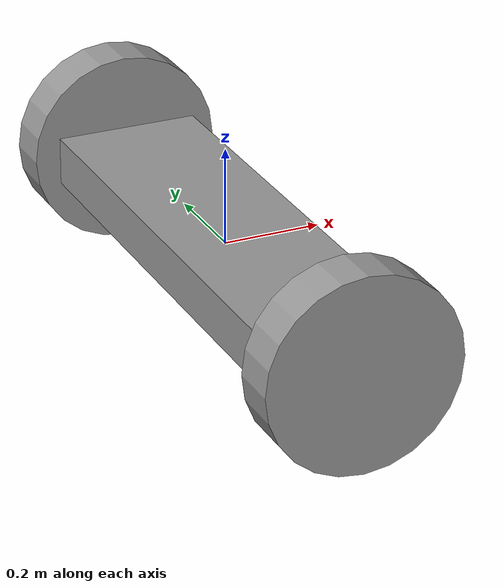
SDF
<?xml version='1.0'?>
<sdf version='1.6'>
  <model name='hoverboard'>
    <link name='chassis'>
      <pose frame=''>0 0 0 0 -0 0</pose>
      <inertial>
        <mass>1</mass>
        <inertia>
          <ixx>0.166667</ixx>
          <ixy>0</ixy>
          <ixz>0</ixz>
          <iyy>0.166667</iyy>
          <iyz>0</iyz>
          <izz>0.166667</izz>
        </inertia>
        <pose frame=''>0 0 0 0 -0 0</pose>
      </inertial>
      <self_collide>0</self_collide>
      <kinematic>0</kinematic>
      <visual name='visual'>
        <pose frame=''>0 0 0 0 -0 0</pose>
        <geometry>
          <box>
            <size>0.3 1 0.1</size>
          </box>
        </geometry>
        <material>
          <lighting>1</lighting>
          <script>
            <uri>file://media/materials/scripts/gazebo.material</uri>
            <name>Gazebo/Grey</name>
          </script>
          <ambient>0.3 0.3 0.3 1</ambient>
          <diffuse>0.7 0.7 0.7 1</diffuse>
          <specular>0.01 0.01 0.01 1</specular>
          <emissive>0 0 0 1</emissive>
          <shader type='vertex'>
            <normal_map>__default__</normal_map>
          </shader>
        </material>
        <transparency>0</transparency>
        <cast_shadows>1</cast_shadows>
      </visual>
      <collision name='collision'>
        <laser_retro>0</laser_retro>
        <max_contacts>10</max_contacts>
        <pose frame=''>0 0 0 0 -0 0</pose>
        <geometry>
          <box>
            <size>0.3 1 0.1</size>
          </box>
        </geometry>
        <surface>
          <friction>
            <ode>
              <mu>1</mu>
              <mu2>1</mu2>
              <fdir1>0 0 0</fdir1>
              <slip1>0</slip1>
              <slip2>0</slip2>
            </ode>
            <torsional>
              <coefficient>1</coefficient>
              <patch_radius>0</patch_radius>
              <surface_radius>0</surface_radius>
              <use_patch_radius>1</use_patch_radius>
              <ode>
                <slip>0</slip>
              </ode>
            </torsional>
          </friction>
          <bounce>
            <restitution_coefficient>0</restitution_coefficient>
            <threshold>1e+06</threshold>
          </bounce>
          <contact>
            <collide_without_contact>0</collide_without_contact>
            <collide_without_contact_bitmask>1</collide_without_contact_bitmask>
            <collide_bitmask>1</collide_bitmask>
            <ode>
              <soft_cfm>0</soft_cfm>
              <soft_erp>0.2</soft_erp>
              <kp>1e+13</kp>
              <kd>1</kd>
              <max_vel>0.01</max_vel>
              <min_depth>0</min_depth>
            </ode>
            <bullet>
              <split_impulse>1</split_impulse>
              <split_impulse_penetration_threshold>-0.01</split_impulse_penetration_threshold>
              <soft_cfm>0</soft_cfm>
              <soft_erp>0.2</soft_erp>
              <kp>1e+13</kp>
              <kd>1</kd>
            </bullet>
          </contact>
        </surface>
      </collision>
    </link>
    <link name='left_wheel'>
      <pose frame=''>0 0.56 0 1.5707 -0 0</pose>
      <inertial>
        <mass>1</mass>
        <inertia>
          <ixx>0.145833</ixx>
          <ixy>0</ixy>
          <ixz>0</ixz>
          <iyy>0.145833</iyy>
          <iyz>0</iyz>
          <izz>0.125</izz>
        </inertia>
        <pose frame=''>0 0 0 0 -0 0</pose>
      </inertial>
      <self_collide>0</self_collide>
      <kinematic>0</kinematic>
      <visual name='visual'>
        <pose frame=''>0 0 0 0 -0 0</pose>
        <geometry>
          <cylinder>
            <radius>0.2</radius>
            <length>0.1</length>
          </cylinder>
        </geometry>
        <material>
          <lighting>1</lighting>
          <script>
            <uri>file://media/materials/scripts/gazebo.material</uri>
            <name>Gazebo/Grey</name>
          </script>
          <ambient>0.3 0.3 0.3 1</ambient>
          <diffuse>0.7 0.7 0.7 1</diffuse>
          <specular>0.01 0.01 0.01 1</specular>
          <emissive>0 0 0 1</emissive>
          <shader type='vertex'>
            <normal_map>__default__</normal_map>
          </shader>
        </material>
        <transparency>0</transparency>
        <cast_shadows>1</cast_shadows>
      </visual>
      <collision name='collision'>
        <laser_retro>0</laser_retro>
        <max_contacts>10</max_contacts>
        <pose frame=''>0 0 0 0 -0 0</pose>
        <geometry>
          <cylinder>
            <radius>0.2</radius>
            <length>0.1</length>
          </cylinder>
        </geometry>
        <surface>
          <friction>
            <ode>
              <mu>1</mu>
              <mu2>1</mu2>
              <fdir1>0 0 0</fdir1>
              <slip1>0</slip1>
              <slip2>0</slip2>
            </ode>
            <torsional>
              <coefficient>1</coefficient>
              <patch_radius>0</patch_radius>
              <surface_radius>0</surface_radius>
              <use_patch_radius>1</use_patch_radius>
              <ode>
                <slip>0</slip>
              </ode>
            </torsional>
          </friction>
          <bounce>
            <restitution_coefficient>0</restitution_coefficient>
            <threshold>1e+06</threshold>
          </bounce>
          <contact>
            <collide_without_contact>0</collide_without_contact>
            <collide_without_contact_bitmask>1</collide_without_contact_bitmask>
            <collide_bitmask>1</collide_bitmask>
            <ode>
              <soft_cfm>0</soft_cfm>
              <soft_erp>0.2</soft_erp>
              <kp>1e+13</kp>
              <kd>1</kd>
              <max_vel>0.01</max_vel>
              <min_depth>0</min_depth>
            </ode>
            <bullet>
              <split_impulse>1</split_impulse>
              <split_impulse_penetration_threshold>-0.01</split_impulse_penetration_threshold>
              <soft_cfm>0</soft_cfm>
              <soft_erp>0.2</soft_erp>
              <kp>1e+13</kp>
              <kd>1</kd>
            </bullet>
          </contact>
        </surface>
      </collision>
    </link>
    <link name='right_wheel'>
      <pose frame=''>0 -0.56 0 1.5707 -0 0</pose>
      <inertial>
        <mass>1</mass>
        <inertia>
          <ixx>0.145833</ixx>
          <ixy>0</ixy>
          <ixz>0</ixz>
          <iyy>0.145833</iyy>
          <iyz>0</iyz>
          <izz>0.125</izz>
        </inertia>
        <pose frame=''>0 0 0 0 -0 0</pose>
      </inertial>
      <self_collide>0</self_collide>
      <kinematic>0</kinematic>
      <visual name='visual'>
        <pose frame=''>0 0 0 0 -0 0</pose>
        <geometry>
          <cylinder>
            <radius>0.2</radius>
            <length>0.1</length>
          </cylinder>
        </geometry>
        <material>
          <lighting>1</lighting>
          <script>
            <uri>file://media/materials/scripts/gazebo.material</uri>
            <name>Gazebo/Grey</name>
          </script>
          <ambient>0.3 0.3 0.3 1</ambient>
          <diffuse>0.7 0.7 0.7 1</diffuse>
          <specular>0.01 0.01 0.01 1</specular>
          <emissive>0 0 0 1</emissive>
          <shader type='vertex'>
            <normal_map>__default__</normal_map>
          </shader>
        </material>
        <transparency>0</transparency>
        <cast_shadows>1</cast_shadows>
      </visual>
      <collision name='collision'>
        <laser_retro>0</laser_retro>
        <max_contacts>10</max_contacts>
        <pose frame=''>0 0 0 0 -0 0</pose>
        <geometry>
          <cylinder>
            <radius>0.2</radius>
            <length>0.1</length>
          </cylinder>
        </geometry>
        <surface>
          <friction>
            <ode>
              <mu>1</mu>
              <mu2>1</mu2>
              <fdir1>0 0 0</fdir1>
              <slip1>0</slip1>
              <slip2>0</slip2>
            </ode>
            <torsional>
              <coefficient>1</coefficient>
              <patch_radius>0</patch_radius>
              <surface_radius>0</surface_radius>
              <use_patch_radius>1</use_patch_radius>
              <ode>
                <slip>0</slip>
              </ode>
            </torsional>
          </friction>
          <bounce>
            <restitution_coefficient>0</restitution_coefficient>
            <threshold>1e+06</threshold>
          </bounce>
          <contact>
            <collide_without_contact>0</collide_without_contact>
            <collide_without_contact_bitmask>1</collide_without_contact_bitmask>
            <collide_bitmask>1</collide_bitmask>
            <ode>
              <soft_cfm>0</soft_cfm>
              <soft_erp>0.2</soft_erp>
              <kp>1e+13</kp>
              <kd>1</kd>
              <max_vel>0.01</max_vel>
              <min_depth>0</min_depth>
            </ode>
            <bullet>
              <split_impulse>1</split_impulse>
              <split_impulse_penetration_threshold>-0.01</split_impulse_penetration_threshold>
              <soft_cfm>0</soft_cfm>
              <soft_erp>0.2</soft_erp>
              <kp>1e+13</kp>
              <kd>1</kd>
            </bullet>
          </contact>
        </surface>
      </collision>
    </link>
    <joint name='left_wheel_joint' type='revolute'>
      <parent>chassis</parent>
      <child>left_wheel</child>
      <pose frame=''>0 0 0 0 -0 0</pose>
      <axis>
        <xyz>0 1 0</xyz>
        <use_parent_model_frame>1</use_parent_model_frame>
        <limit>
          <lower>-1.79769e+308</lower>
          <upper>1.79769e+308</upper>
          <effort>-1</effort>
          <velocity>-1</velocity>
        </limit>
        <dynamics>
          <spring_reference>0</spring_reference>
          <spring_stiffness>0</spring_stiffness>
          <damping>0</damping>
          <friction>0</friction>
        </dynamics>
      </axis>
      <physics>
        <ode>
          <limit>
            <cfm>0</cfm>
            <erp>0.2</erp>
          </limit>
          <suspension>
            <cfm>0</cfm>
            <erp>0.2</erp>
          </suspension>
        </ode>
      </physics>
    </joint>
    <joint name='right_wheel_joint' type='revolute'>
      <parent>chassis</parent>
      <child>right_wheel</child>
      <pose frame=''>0 0 0 0 -0 0</pose>
      <axis>
        <xyz>0 1 0</xyz>
        <use_parent_model_frame>1</use_parent_model_frame>
        <limit>
          <lower>-1.79769e+308</lower>
          <upper>1.79769e+308</upper>
          <effort>-1</effort>
          <velocity>-1</velocity>
        </limit>
        <dynamics>
          <spring_reference>0</spring_reference>
          <spring_stiffness>0</spring_stiffness>
          <damping>0</damping>
          <friction>0</friction>
        </dynamics>
      </axis>
      <physics>
        <ode>
          <limit>
            <cfm>0</cfm>
            <erp>0.2</erp>
          </limit>
          <suspension>
            <cfm>0</cfm>
            <erp>0.2</erp>
          </suspension>
        </ode>
      </physics>
    </joint>
    <static>0</static>
    <allow_auto_disable>1</allow_auto_disable>
    <plugin name='hoverboard' filename='libhoverboard.so'>
    <lin_velocity>0</lin_velocity>
    <ang_velocity>0</ang_velocity>
    </plugin>
  </model>
</sdf>
